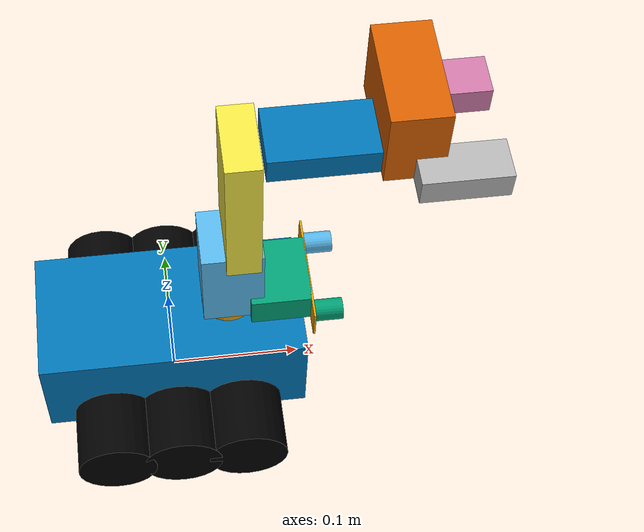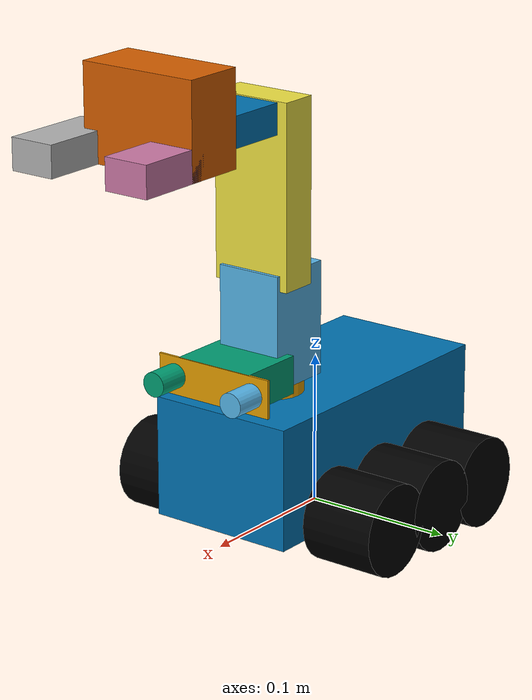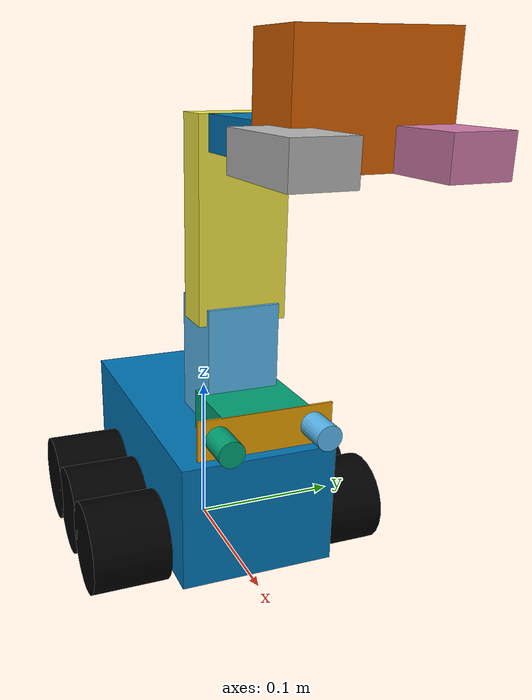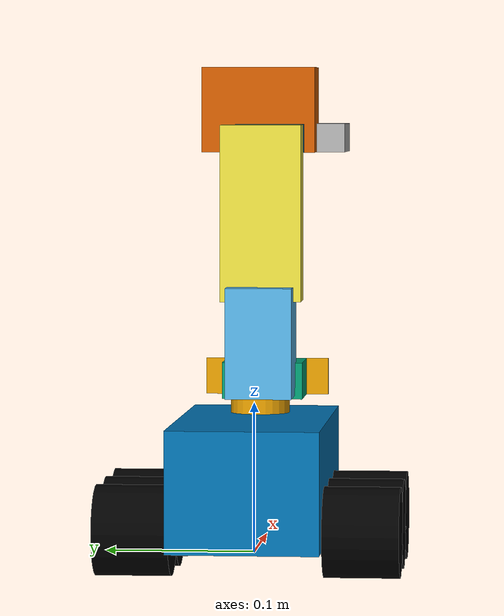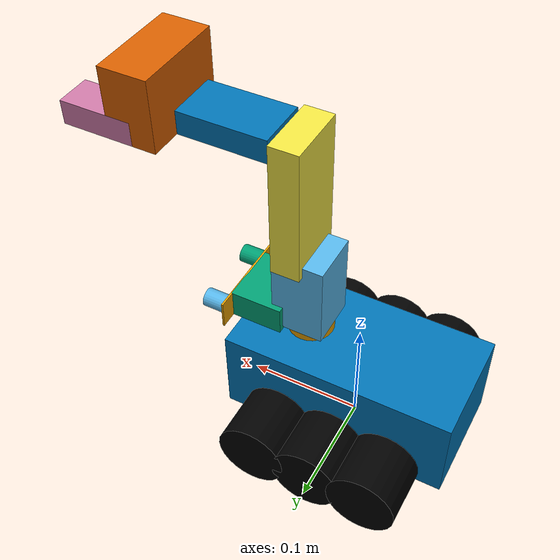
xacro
<?xml version="1.0"?>
<robot name="jetank" xmlns:xacro="http://www.ros.org/wiki/xacro">

  <xacro:include filename="$(find robot_main)/urdf/properties.xacro"/>
  <xacro:include filename="$(find robot_main)/urdf/jetank_wheel.xacro"/>
  <xacro:include filename="$(find robot_main)/urdf/jetank_arm.xacro"/>
  <xacro:include filename="$(find robot_main)/urdf/jetank_gripper.xacro"/>
  <xacro:include filename="$(find robot_main)/urdf/jetank_camera.xacro"/>

  <!-- Base link -->
  <link name="base_link" />

  <!-- Main robot frame -->
  <link name="chassis">
    <visual>
      <geometry>
        <box size="${chassis_length} ${chassis_width} ${chassis_height}"/>
      </geometry>
    </visual>
    <collision>
      <geometry>
        <box size="${chassis_length} ${chassis_width} ${chassis_height}"/>
      </geometry>
    </collision>
  </link>

  <joint name="base_joint" type="fixed">
    <parent link="base_link"/>
    <child link="chassis"/>
    <origin xyz="0.0 0.0 ${(ground_clearance+(chassis_height/2))}"/>
  </joint>

      <!-- Instantiate wheels -->
  <xacro:wheel prefix="left_front" x="${((chassis_length/2)-(0.02+wheel_radius))}" y="${-((chassis_width / 2)+(wheel_length/2))}" z="${-wheel_radius}"/>
  <xacro:wheel prefix="right_front" x="${((chassis_length/2)-(0.02+wheel_radius))}" y="${((chassis_width / 2)+(wheel_length/2))}" z="${-wheel_radius}"/>

  <xacro:wheel prefix="left_middle" x="0" y="${-((chassis_width / 2)+(wheel_length/2))}" z="${-wheel_radius}"/>
  <xacro:wheel prefix="right_middle" x="0" y="${((chassis_width / 2)+(wheel_length/2))}" z="${-wheel_radius}"/>

  <xacro:wheel prefix="left_back" x="${-((chassis_length/2)-(0.02+wheel_radius))}" y="${-((chassis_width / 2)+(wheel_length/2))}" z="${-wheel_radius}"/>
  <xacro:wheel prefix="right_back" x="${-((chassis_length/2)-(0.02+wheel_radius))}" y="${((chassis_width / 2)+(wheel_length/2))}" z="${-wheel_radius}"/>

</robot>

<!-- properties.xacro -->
<robot xmlns:xacro="http://www.ros.org/wiki/xacro">

  <!-- Chassis parameters -->
  <xacro:property name="chassis_length" value="0.2"/>
  <xacro:property name="chassis_width" value="0.1"/>
  <xacro:property name="chassis_height" value="0.08"/>
  <xacro:property name="wheel_radius" value="0.03"/>
  <xacro:property name="wheel_length" value="0.05"/>
  <xacro:property name="ground_clearance" value="0.01"/>

  <!-- Arm parameters -->
  <xacro:property name="arm_bearing_radius" value="0.02"/>
  <xacro:property name="arm_bearing_height" value="0.01"/>
  <xacro:property name="arm_base_length" value="0.045"/>
  <xacro:property name="arm_base_width" value="0.045"/>
  <xacro:property name="arm_base_heigth" value="0.075"/>
  <xacro:property name="arm_camera_length" value="0.045"/>
  <xacro:property name="arm_camera_width" value="0.055"/>
  <xacro:property name="arm_camera_heigth" value="0.025"/>
  <xacro:property name="arm_long_length" value="0.12"/>
  <xacro:property name="arm_long_width" value="0.055"/>
  <xacro:property name="arm_long_heigth" value="0.025"/>
  <xacro:property name="arm_short_length" value="0.09"/>
  <xacro:property name="arm_short_width" value="0.045"/>
  <xacro:property name="arm_short_heigth" value="0.02"/>

  <!-- Gripper parameters -->
  <xacro:property name="gripper_base_length" value="0.04"/>
  <xacro:property name="gripper_base_width" value="0.08"/>
  <xacro:property name="gripper_base_heigth" value="0.06"/>
  <xacro:property name="gripper_finger_length" value="0.06"/>
  <xacro:property name="gripper_finger_width" value="0.03"/>
  <xacro:property name="gripper_finger_heigth" value="0.02"/>
  <xacro:property name="gripper_finger_range" value="0.02"/>

  <!-- Camera parameters -->
  <xacro:property name="camera_base_length" value="0.0016"/>
  <xacro:property name="camera_base_width" value="0.085"/>
  <xacro:property name="camera_base_heigth" value="0.025"/>
  <xacro:property name="camera_radius" value="0.008"/>
  <xacro:property name="camera_heigth" value="0.022"/>
  <xacro:property name="camera_dist" value="0.03"/>
</robot>

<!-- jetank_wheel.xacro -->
<robot xmlns:xacro="http://www.ros.org/wiki/xacro">

  <xacro:macro name="wheel" params="prefix x y z">
    <link name="${prefix}_wheel">
      <visual>
        <origin xyz="0 0 0" rpy="0 ${pi/2} ${pi/2}"/>
        <geometry>
          <cylinder radius="${wheel_radius}" length="${wheel_length}"/>
        </geometry>
        <material name="black">
          <color rgba="0 0 0 1"/>
        </material>
      </visual>
      <collision>
        <origin xyz="0 0 0" rpy="0 ${pi/2} ${pi/2}"/>
        <geometry>
          <cylinder radius="${wheel_radius}" length="${wheel_length}"/>
        </geometry>
      </collision>
    </link>
    <joint name="${prefix}_wheel_joint" type="continuous">
      <parent link="chassis"/>
      <child link="${prefix}_wheel"/>
      <origin xyz="${x} ${y} ${z}" rpy="0 0 0"/>
      <axis xyz="0 1 0"/>
    </joint>
  </xacro:macro>

</robot>

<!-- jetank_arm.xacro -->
<robot xmlns:xacro="http://www.ros.org/wiki/xacro">

<!-- Links -->
  <!-- Bearing -->
  <link name="arm_bearing_link">
    <visual>
      <geometry>
        <cylinder length="${arm_bearing_height}" radius="${arm_bearing_radius}"/>
      </geometry>
    </visual>
  </link>
  <!-- Base Link -->
  <link name="arm_base_link">
    <visual>
      <geometry>
        <box size="${arm_base_length} ${arm_base_width} ${arm_base_heigth}"/>
      </geometry>
    </visual>
  </link>
  <!-- Camera Link -->
  <link name="camera_base_link">
    <visual>
      <geometry>
        <box size="${arm_camera_length} ${arm_camera_width} ${arm_camera_heigth}"/>
      </geometry>
      <origin xyz="${arm_camera_length/2} 0 0" rpy="0 0 0"/>
    </visual>
  </link>
  <!-- Long Link -->
  <link name="arm_long_link">
    <visual>
      <geometry>
        <box size="${arm_long_length} ${arm_long_width} ${arm_long_heigth}"/>
      </geometry>
      <origin xyz="${arm_long_length/2} 0 0" rpy="0 0 0"/>
    </visual>
  </link>
  <!-- Short Link -->
  <link name="arm_short_link">
    <visual>
      <geometry>
        <box size="${arm_short_length} ${arm_short_width} ${arm_short_heigth}"/>
      </geometry>
      <origin xyz="${arm_long_length/2} 0 0" rpy="0 0 0"/>
    </visual>
  </link>

<!-- Joints -->
  <!-- Arm bearing to chassis -->
  <joint name="chassis_to_arm_bearing_joint" type="revolute">
    <parent link="chassis"/>
    <child link="arm_bearing_link"/>
    <origin xyz="${(chassis_length/2)-0.055} 0 ${(chassis_height/2)+(arm_bearing_height/2)}" rpy="0 0 0"/>
    <axis xyz="0 0 1"/>
    <limit effort="10.0" lower="-1.0" upper="1.0" velocity="1.0"/>
  </joint>

  <!-- Arm base to arm bearing -->
  <joint name="arm_base_to_arm_bearing_joint" type="continuous">
    <parent link="arm_bearing_link"/>
    <child link="arm_base_link"/>
    <origin xyz="${((arm_base_length/2)-arm_bearing_radius)} 0 ${(arm_bearing_height/2)+(arm_base_heigth/2)}" rpy="0 0 0"/>
    <axis xyz="0 0 1"/>
  </joint>

  <!-- Camera to arm base joint -->
  <joint name="arm_base_to_camera_joint" type="revolute">
    <parent link="arm_base_link"/>
    <child link="camera_base_link"/>
    <origin xyz="${(arm_base_length/2)-0.01} 0 ${-(arm_base_heigth/2)+0.01}" rpy="0 0 0"/>
    <axis xyz="0 1 0"/>
    <limit effort="10.0" lower="-1.0" upper="1.0" velocity="1.0"/>
  </joint>

  <!-- Long link to arm base joint -->
  <joint name="arm_base_to_long_joint" type="revolute">
    <parent link="arm_base_link"/>
    <child link="arm_long_link"/>
    <origin xyz="${(-arm_base_length/2)+0.03} 0 ${arm_base_heigth/2-0.01}" rpy="0 -1.57079632679 0"/>
    <axis xyz="0 1 0"/>
    <limit effort="10.0" lower="-1.0" upper="1.0" velocity="1.0"/>
  </joint>

  <!-- Short link to long link joint -->
  <joint name="arm_long_to_short_joint" type="revolute">
    <parent link="arm_long_link"/>
    <child link="arm_short_link"/>
    <origin xyz="${(arm_long_length)-0.01} 0 0" rpy="0 1.57079632679 0"/>
    <axis xyz="0 1 0"/>
    <limit effort="10.0" lower="-1.0" upper="1.0" velocity="1.0"/>
  </joint>

</robot>

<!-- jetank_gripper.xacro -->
<robot xmlns:xacro="http://www.ros.org/wiki/xacro">
<!-- Links -->
  <!-- Camera base -->
  <link name="gripper_base_link">
    <visual>
      <geometry>
        <box size="${gripper_base_length} ${gripper_base_width} ${gripper_base_heigth}"/>
      </geometry>
    </visual>
  </link>
  <!-- Camera finger -->

<!-- Joints -->
  <!-- Gripper base to arm -->
  <joint name="gripper_base_to_arm_joint" type="fixed">
    <parent link="arm_short_link"/>
    <child link="gripper_base_link"/>
    <origin xyz="${arm_short_length+(gripper_base_length/2)} ${0.01} ${(gripper_base_heigth/2)-(arm_short_heigth/2)}" rpy="0 0 0"/>
  </joint>

  <link name="left_finger_link">
    <visual>
      <geometry>
        <box size="${gripper_finger_length} ${gripper_finger_width} ${gripper_finger_heigth}"/>
      </geometry>
    </visual>
  </link>
  <joint name="left_finger_joint" type="prismatic">
    <parent link="gripper_base_link"/>
    <child link="left_finger_link"/>
    <origin xyz="${gripper_finger_length/2} ${(gripper_finger_range+(gripper_finger_width/2))-0.01} ${-gripper_finger_heigth}" rpy="0 0 0"/>
    <limit lower="0" upper="${gripper_finger_range}" effort="10.0" velocity="1.0"/>
    <axis xyz="0 -1 0"/>
  </joint>

  <link name="right_finger_link">
    <visual>
      <geometry>
        <box size="${gripper_finger_length} ${gripper_finger_width} ${gripper_finger_heigth}"/>
      </geometry>
    </visual>
  </link>
  <joint name="right_finger_joint" type="prismatic">
    <parent link="gripper_base_link"/>
    <child link="right_finger_link"/>
    <origin xyz="${gripper_finger_length/2} ${-(gripper_finger_range+(gripper_finger_width/2))-0.01} ${-gripper_finger_heigth}" rpy="0 0 0"/>
    <limit lower="0" upper="${gripper_finger_range}" effort="10.0" velocity="1.0"/>
    <axis xyz="0 1 0"/>
    <mimic joint="left_finger_joint" multiplier="1.0" offset="0.0"/>
  </joint>

</robot>

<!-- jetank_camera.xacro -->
<robot xmlns:xacro="http://www.ros.org/wiki/xacro">
  <!-- Links -->
  <!-- Gripper base -->
  <link name="camera_base_plate_link">
    <visual>
      <geometry>
        <box size="${camera_base_length} ${camera_base_width} ${camera_base_heigth}"/>
      </geometry>
    </visual>
  </link>
  <!-- Camera left -->
  <link name="camera_left_link">
    <visual>
      <geometry>
        <cylinder length="${camera_heigth}" radius="${camera_radius}"/>
      </geometry>
    </visual>
  </link>
  <!-- Camera right -->
  <link name="camera_right_link">
    <visual>
      <geometry>
        <cylinder length="${camera_heigth}" radius="${camera_radius}"/>
      </geometry>
    </visual>
  </link>

  <!-- Joints -->
  <!-- Camera plate to base -->
  <joint name="camera_base_plate_to_base_joint" type="fixed">
    <parent link="camera_base_link"/>
    <child link="camera_base_plate_link"/>
    <origin xyz="${arm_camera_length} ${0.0} ${0.0}" rpy="0 0.0 0"/>
  </joint>
  <!-- Camera left to base -->
  <joint name="camera_left_to_base_joint" type="fixed">
    <parent link="camera_base_plate_link"/>
    <child link="camera_left_link"/>
    <origin xyz="${camera_heigth/2} ${camera_dist} ${0.0}" rpy="0 1.57079632679 0"/>
  </joint>
  <!-- Camera right to base -->
  <joint name="camera_right_to_base_joint" type="fixed">
    <parent link="camera_base_plate_link"/>
    <child link="camera_right_link"/>
    <origin xyz="${camera_heigth/2} ${-camera_dist} ${0.0}" rpy="0 1.57079632679 0"/>
  </joint>

</robot>
